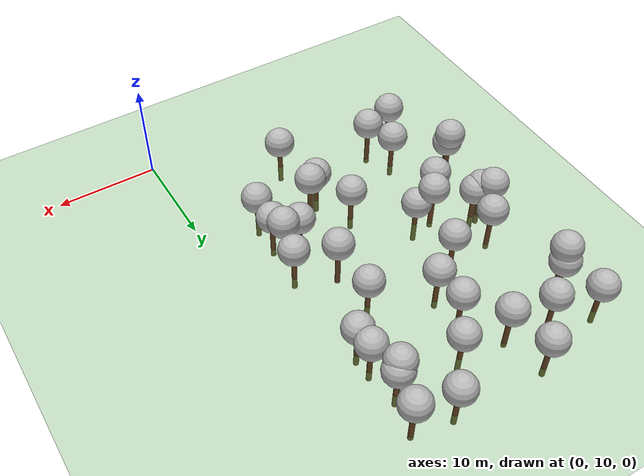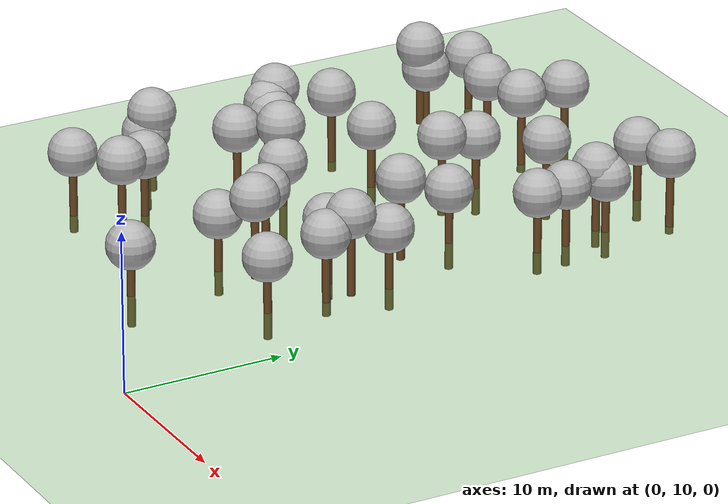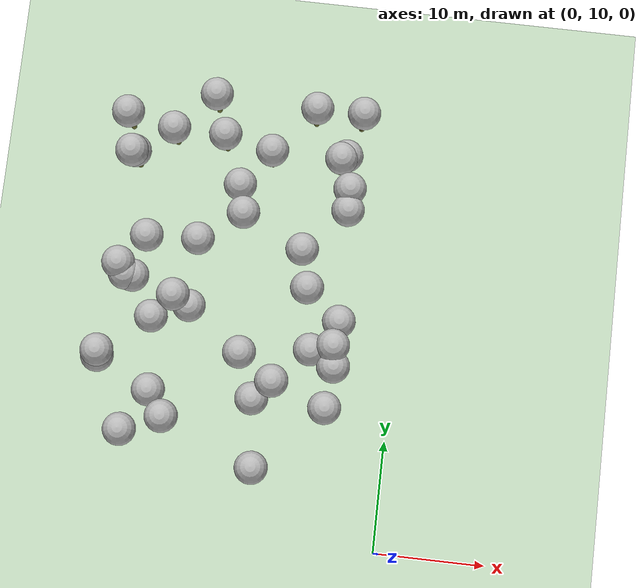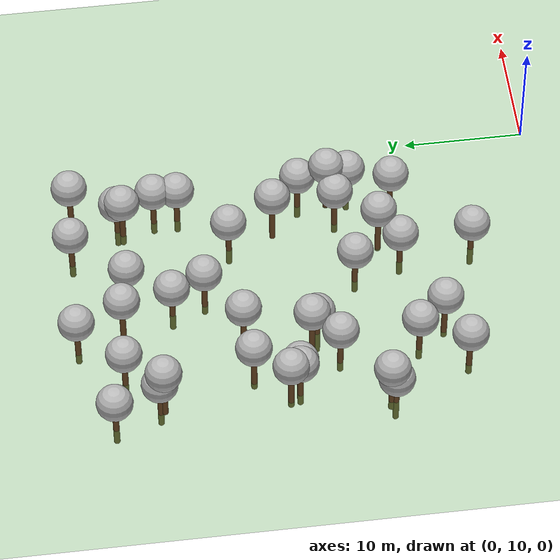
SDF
<sdf version="1.5">
 <world name="default">
  <model name="tree_simple492">
   <static>1</static>
   <link name="link">
    <pose>0 0 0.1 0 -0 0</pose>
    <collision name="collision_trunk">
     <pose>0 0 2 0 -0 0</pose>
     <geometry><cylinder><radius>0.25</radius><length>4</length></cylinder></geometry>
    </collision>
    <collision name="collision_treetop">
     <pose>0 0 5.2 0 -0 0</pose>
     <geometry><sphere><radius>1.5</radius></sphere></geometry>
    </collision>
    <visual name="trunk">
     <pose>0 0 2 0 -0 0</pose>
     <geometry><cylinder><radius>0.25</radius><length>4</length></cylinder></geometry>
     <material>
      <script>
       <uri>model://tree_simple/scripts</uri>
       <uri>model://tree_simple/materials/textures</uri>
       <name>TreeSimple/Trunk</name>
      </script>
     </material>
    </visual>
    <visual name="treetop">
     <pose>0 0 5.2 0 -0 0</pose>
     <geometry><sphere><radius>1.5</radius></sphere></geometry>
     <material>
      <script>
       <uri>model://tree_simple/scripts</uri>
       <uri>model://tree_simple/materials/textures</uri>
       <name>TreeSimple/Treetop</name>
      </script>
     </material>
    </visual>
   </link>
   <pose>-7.60604313382 27.1336498888 -1.1574021075913579 0 -0 0</pose>
  </model>
  <model name="tree_simple483">
   <static>1</static>
   <link name="link">
    <pose>0 0 0.1 0 -0 0</pose>
    <collision name="collision_trunk">
     <pose>0 0 2 0 -0 0</pose>
     <geometry><cylinder><radius>0.25</radius><length>4</length></cylinder></geometry>
    </collision>
    <collision name="collision_treetop">
     <pose>0 0 5.2 0 -0 0</pose>
     <geometry><sphere><radius>1.5</radius></sphere></geometry>
    </collision>
    <visual name="trunk">
     <pose>0 0 2 0 -0 0</pose>
     <geometry><cylinder><radius>0.25</radius><length>4</length></cylinder></geometry>
     <material>
      <script>
       <uri>model://tree_simple/scripts</uri>
       <uri>model://tree_simple/materials/textures</uri>
       <name>TreeSimple/Trunk</name>
      </script>
     </material>
    </visual>
    <visual name="treetop">
     <pose>0 0 5.2 0 -0 0</pose>
     <geometry><sphere><radius>1.5</radius></sphere></geometry>
     <material>
      <script>
       <uri>model://tree_simple/scripts</uri>
       <uri>model://tree_simple/materials/textures</uri>
       <name>TreeSimple/Treetop</name>
      </script>
     </material>
    </visual>
   </link>
   <pose>-6.65162129766 44.7613363002 -1.2295763160659292 0 -0 0</pose>
  </model>
  <model name="tree_simple479">
   <static>1</static>
   <link name="link">
    <pose>0 0 0.1 0 -0 0</pose>
    <collision name="collision_trunk">
     <pose>0 0 2 0 -0 0</pose>
     <geometry><cylinder><radius>0.25</radius><length>4</length></cylinder></geometry>
    </collision>
    <collision name="collision_treetop">
     <pose>0 0 5.2 0 -0 0</pose>
     <geometry><sphere><radius>1.5</radius></sphere></geometry>
    </collision>
    <visual name="trunk">
     <pose>0 0 2 0 -0 0</pose>
     <geometry><cylinder><radius>0.25</radius><length>4</length></cylinder></geometry>
     <material>
      <script>
       <uri>model://tree_simple/scripts</uri>
       <uri>model://tree_simple/materials/textures</uri>
       <name>TreeSimple/Trunk</name>
      </script>
     </material>
    </visual>
    <visual name="treetop">
     <pose>0 0 5.2 0 -0 0</pose>
     <geometry><sphere><radius>1.5</radius></sphere></geometry>
     <material>
      <script>
       <uri>model://tree_simple/scripts</uri>
       <uri>model://tree_simple/materials/textures</uri>
       <name>TreeSimple/Treetop</name>
      </script>
     </material>
    </visual>
   </link>
   <pose>-12.2778199556 22.3020251283 -1.718333494915143 0 -0 0</pose>
  </model>
  <model name="tree_simple466">
   <static>1</static>
   <link name="link">
    <pose>0 0 0.1 0 -0 0</pose>
    <collision name="collision_trunk">
     <pose>0 0 2 0 -0 0</pose>
     <geometry><cylinder><radius>0.25</radius><length>4</length></cylinder></geometry>
    </collision>
    <collision name="collision_treetop">
     <pose>0 0 5.2 0 -0 0</pose>
     <geometry><sphere><radius>1.5</radius></sphere></geometry>
    </collision>
    <visual name="trunk">
     <pose>0 0 2 0 -0 0</pose>
     <geometry><cylinder><radius>0.25</radius><length>4</length></cylinder></geometry>
     <material>
      <script>
       <uri>model://tree_simple/scripts</uri>
       <uri>model://tree_simple/materials/textures</uri>
       <name>TreeSimple/Trunk</name>
      </script>
     </material>
    </visual>
    <visual name="treetop">
     <pose>0 0 5.2 0 -0 0</pose>
     <geometry><sphere><radius>1.5</radius></sphere></geometry>
     <material>
      <script>
       <uri>model://tree_simple/scripts</uri>
       <uri>model://tree_simple/materials/textures</uri>
       <name>TreeSimple/Treetop</name>
      </script>
     </material>
    </visual>
   </link>
   <pose>-5.77986608036 22.173723886 -1.8364854011726721 0 -0 0</pose>
  </model>
  <model name="tree_simple446">
   <static>1</static>
   <link name="link">
    <pose>0 0 0.1 0 -0 0</pose>
    <collision name="collision_trunk">
     <pose>0 0 2 0 -0 0</pose>
     <geometry><cylinder><radius>0.25</radius><length>4</length></cylinder></geometry>
    </collision>
    <collision name="collision_treetop">
     <pose>0 0 5.2 0 -0 0</pose>
     <geometry><sphere><radius>1.5</radius></sphere></geometry>
    </collision>
    <visual name="trunk">
     <pose>0 0 2 0 -0 0</pose>
     <geometry><cylinder><radius>0.25</radius><length>4</length></cylinder></geometry>
     <material>
      <script>
       <uri>model://tree_simple/scripts</uri>
       <uri>model://tree_simple/materials/textures</uri>
       <name>TreeSimple/Trunk</name>
      </script>
     </material>
    </visual>
    <visual name="treetop">
     <pose>0 0 5.2 0 -0 0</pose>
     <geometry><sphere><radius>1.5</radius></sphere></geometry>
     <material>
      <script>
       <uri>model://tree_simple/scripts</uri>
       <uri>model://tree_simple/materials/textures</uri>
       <name>TreeSimple/Treetop</name>
      </script>
     </material>
    </visual>
   </link>
   <pose>-14.8873591434 38.8088683427 -1.1276394450898937 0 -0 0</pose>
  </model>
  <model name="tree_simple441">
   <static>1</static>
   <link name="link">
    <pose>0 0 0.1 0 -0 0</pose>
    <collision name="collision_trunk">
     <pose>0 0 2 0 -0 0</pose>
     <geometry><cylinder><radius>0.25</radius><length>4</length></cylinder></geometry>
    </collision>
    <collision name="collision_treetop">
     <pose>0 0 5.2 0 -0 0</pose>
     <geometry><sphere><radius>1.5</radius></sphere></geometry>
    </collision>
    <visual name="trunk">
     <pose>0 0 2 0 -0 0</pose>
     <geometry><cylinder><radius>0.25</radius><length>4</length></cylinder></geometry>
     <material>
      <script>
       <uri>model://tree_simple/scripts</uri>
       <uri>model://tree_simple/materials/textures</uri>
       <name>TreeSimple/Trunk</name>
      </script>
     </material>
    </visual>
    <visual name="treetop">
     <pose>0 0 5.2 0 -0 0</pose>
     <geometry><sphere><radius>1.5</radius></sphere></geometry>
     <material>
      <script>
       <uri>model://tree_simple/scripts</uri>
       <uri>model://tree_simple/materials/textures</uri>
       <name>TreeSimple/Treetop</name>
      </script>
     </material>
    </visual>
   </link>
   <pose>-25.4258718868 33.0017159702 -0.7226918505296419 0 -0 0</pose>
  </model>
  <model name="tree_simple436">
   <static>1</static>
   <link name="link">
    <pose>0 0 0.1 0 -0 0</pose>
    <collision name="collision_trunk">
     <pose>0 0 2 0 -0 0</pose>
     <geometry><cylinder><radius>0.25</radius><length>4</length></cylinder></geometry>
    </collision>
    <collision name="collision_treetop">
     <pose>0 0 5.2 0 -0 0</pose>
     <geometry><sphere><radius>1.5</radius></sphere></geometry>
    </collision>
    <visual name="trunk">
     <pose>0 0 2 0 -0 0</pose>
     <geometry><cylinder><radius>0.25</radius><length>4</length></cylinder></geometry>
     <material>
      <script>
       <uri>model://tree_simple/scripts</uri>
       <uri>model://tree_simple/materials/textures</uri>
       <name>TreeSimple/Trunk</name>
      </script>
     </material>
    </visual>
    <visual name="treetop">
     <pose>0 0 5.2 0 -0 0</pose>
     <geometry><sphere><radius>1.5</radius></sphere></geometry>
     <material>
      <script>
       <uri>model://tree_simple/scripts</uri>
       <uri>model://tree_simple/materials/textures</uri>
       <name>TreeSimple/Treetop</name>
      </script>
     </material>
    </visual>
   </link>
   <pose>-12.9773602363 44.9895309953 -1.9622175962136006 0 -0 0</pose>
  </model>
  <model name="tree_simple425">
   <static>1</static>
   <link name="link">
    <pose>0 0 0.1 0 -0 0</pose>
    <collision name="collision_trunk">
     <pose>0 0 2 0 -0 0</pose>
     <geometry><cylinder><radius>0.25</radius><length>4</length></cylinder></geometry>
    </collision>
    <collision name="collision_treetop">
     <pose>0 0 5.2 0 -0 0</pose>
     <geometry><sphere><radius>1.5</radius></sphere></geometry>
    </collision>
    <visual name="trunk">
     <pose>0 0 2 0 -0 0</pose>
     <geometry><cylinder><radius>0.25</radius><length>4</length></cylinder></geometry>
     <material>
      <script>
       <uri>model://tree_simple/scripts</uri>
       <uri>model://tree_simple/materials/textures</uri>
       <name>TreeSimple/Trunk</name>
      </script>
     </material>
    </visual>
    <visual name="treetop">
     <pose>0 0 5.2 0 -0 0</pose>
     <geometry><sphere><radius>1.5</radius></sphere></geometry>
     <material>
      <script>
       <uri>model://tree_simple/scripts</uri>
       <uri>model://tree_simple/materials/textures</uri>
       <name>TreeSimple/Treetop</name>
      </script>
     </material>
    </visual>
   </link>
   <pose>-9.294152574 36.1907172759 -1.8510616051689301 0 -0 0</pose>
  </model>
  <model name="tree_simple409">
   <static>1</static>
   <link name="link">
    <pose>0 0 0.1 0 -0 0</pose>
    <collision name="collision_trunk">
     <pose>0 0 2 0 -0 0</pose>
     <geometry><cylinder><radius>0.25</radius><length>4</length></cylinder></geometry>
    </collision>
    <collision name="collision_treetop">
     <pose>0 0 5.2 0 -0 0</pose>
     <geometry><sphere><radius>1.5</radius></sphere></geometry>
    </collision>
    <visual name="trunk">
     <pose>0 0 2 0 -0 0</pose>
     <geometry><cylinder><radius>0.25</radius><length>4</length></cylinder></geometry>
     <material>
      <script>
       <uri>model://tree_simple/scripts</uri>
       <uri>model://tree_simple/materials/textures</uri>
       <name>TreeSimple/Trunk</name>
      </script>
     </material>
    </visual>
    <visual name="treetop">
     <pose>0 0 5.2 0 -0 0</pose>
     <geometry><sphere><radius>1.5</radius></sphere></geometry>
     <material>
      <script>
       <uri>model://tree_simple/scripts</uri>
       <uri>model://tree_simple/materials/textures</uri>
       <name>TreeSimple/Treetop</name>
      </script>
     </material>
    </visual>
   </link>
   <pose>-23.2045481925 35.7189479207 -0.7933432567101588 0 -0 0</pose>
  </model>
  <model name="tree_simple398">
   <static>1</static>
   <link name="link">
    <pose>0 0 0.1 0 -0 0</pose>
    <collision name="collision_trunk">
     <pose>0 0 2 0 -0 0</pose>
     <geometry><cylinder><radius>0.25</radius><length>4</length></cylinder></geometry>
    </collision>
    <collision name="collision_treetop">
     <pose>0 0 5.2 0 -0 0</pose>
     <geometry><sphere><radius>1.5</radius></sphere></geometry>
    </collision>
    <visual name="trunk">
     <pose>0 0 2 0 -0 0</pose>
     <geometry><cylinder><radius>0.25</radius><length>4</length></cylinder></geometry>
     <material>
      <script>
       <uri>model://tree_simple/scripts</uri>
       <uri>model://tree_simple/materials/textures</uri>
       <name>TreeSimple/Trunk</name>
      </script>
     </material>
    </visual>
    <visual name="treetop">
     <pose>0 0 5.2 0 -0 0</pose>
     <geometry><sphere><radius>1.5</radius></sphere></geometry>
     <material>
      <script>
       <uri>model://tree_simple/scripts</uri>
       <uri>model://tree_simple/materials/textures</uri>
       <name>TreeSimple/Treetop</name>
      </script>
     </material>
    </visual>
   </link>
   <pose>-5.63129043723 27.5985943182 -0.21076603917059833 0 -0 0</pose>
  </model>
  <model name="tree_simple359">
   <static>1</static>
   <link name="link">
    <pose>0 0 0.1 0 -0 0</pose>
    <collision name="collision_trunk">
     <pose>0 0 2 0 -0 0</pose>
     <geometry><cylinder><radius>0.25</radius><length>4</length></cylinder></geometry>
    </collision>
    <collision name="collision_treetop">
     <pose>0 0 5.2 0 -0 0</pose>
     <geometry><sphere><radius>1.5</radius></sphere></geometry>
    </collision>
    <visual name="trunk">
     <pose>0 0 2 0 -0 0</pose>
     <geometry><cylinder><radius>0.25</radius><length>4</length></cylinder></geometry>
     <material>
      <script>
       <uri>model://tree_simple/scripts</uri>
       <uri>model://tree_simple/materials/textures</uri>
       <name>TreeSimple/Trunk</name>
      </script>
     </material>
    </visual>
    <visual name="treetop">
     <pose>0 0 5.2 0 -0 0</pose>
     <geometry><sphere><radius>1.5</radius></sphere></geometry>
     <material>
      <script>
       <uri>model://tree_simple/scripts</uri>
       <uri>model://tree_simple/materials/textures</uri>
       <name>TreeSimple/Treetop</name>
      </script>
     </material>
    </visual>
   </link>
   <pose>-20.2372130322 30.6626507403 -0.761230249054939 0 -0 0</pose>
  </model>
  <model name="tree_simple353">
   <static>1</static>
   <link name="link">
    <pose>0 0 0.1 0 -0 0</pose>
    <collision name="collision_trunk">
     <pose>0 0 2 0 -0 0</pose>
     <geometry><cylinder><radius>0.25</radius><length>4</length></cylinder></geometry>
    </collision>
    <collision name="collision_treetop">
     <pose>0 0 5.2 0 -0 0</pose>
     <geometry><sphere><radius>1.5</radius></sphere></geometry>
    </collision>
    <visual name="trunk">
     <pose>0 0 2 0 -0 0</pose>
     <geometry><cylinder><radius>0.25</radius><length>4</length></cylinder></geometry>
     <material>
      <script>
       <uri>model://tree_simple/scripts</uri>
       <uri>model://tree_simple/materials/textures</uri>
       <name>TreeSimple/Trunk</name>
      </script>
     </material>
    </visual>
    <visual name="treetop">
     <pose>0 0 5.2 0 -0 0</pose>
     <geometry><sphere><radius>1.5</radius></sphere></geometry>
     <material>
      <script>
       <uri>model://tree_simple/scripts</uri>
       <uri>model://tree_simple/materials/textures</uri>
       <name>TreeSimple/Treetop</name>
      </script>
     </material>
    </visual>
   </link>
   <pose>-8.45318639894 32.4449291469 -0.09264853999035538 0 -0 0</pose>
  </model>
  <model name="tree_simple343">
   <static>1</static>
   <link name="link">
    <pose>0 0 0.1 0 -0 0</pose>
    <collision name="collision_trunk">
     <pose>0 0 2 0 -0 0</pose>
     <geometry><cylinder><radius>0.25</radius><length>4</length></cylinder></geometry>
    </collision>
    <collision name="collision_treetop">
     <pose>0 0 5.2 0 -0 0</pose>
     <geometry><sphere><radius>1.5</radius></sphere></geometry>
    </collision>
    <visual name="trunk">
     <pose>0 0 2 0 -0 0</pose>
     <geometry><cylinder><radius>0.25</radius><length>4</length></cylinder></geometry>
     <material>
      <script>
       <uri>model://tree_simple/scripts</uri>
       <uri>model://tree_simple/materials/textures</uri>
       <name>TreeSimple/Trunk</name>
      </script>
     </material>
    </visual>
    <visual name="treetop">
     <pose>0 0 5.2 0 -0 0</pose>
     <geometry><sphere><radius>1.5</radius></sphere></geometry>
     <material>
      <script>
       <uri>model://tree_simple/scripts</uri>
       <uri>model://tree_simple/materials/textures</uri>
       <name>TreeSimple/Treetop</name>
      </script>
     </material>
    </visual>
   </link>
   <pose>-17.2958932822 45.7138384605 -0.6714615107388084 0 -0 0</pose>
  </model>
  <model name="tree_simple342">
   <static>1</static>
   <link name="link">
    <pose>0 0 0.1 0 -0 0</pose>
    <collision name="collision_trunk">
     <pose>0 0 2 0 -0 0</pose>
     <geometry><cylinder><radius>0.25</radius><length>4</length></cylinder></geometry>
    </collision>
    <collision name="collision_treetop">
     <pose>0 0 5.2 0 -0 0</pose>
     <geometry><sphere><radius>1.5</radius></sphere></geometry>
    </collision>
    <visual name="trunk">
     <pose>0 0 2 0 -0 0</pose>
     <geometry><cylinder><radius>0.25</radius><length>4</length></cylinder></geometry>
     <material>
      <script>
       <uri>model://tree_simple/scripts</uri>
       <uri>model://tree_simple/materials/textures</uri>
       <name>TreeSimple/Trunk</name>
      </script>
     </material>
    </visual>
    <visual name="treetop">
     <pose>0 0 5.2 0 -0 0</pose>
     <geometry><sphere><radius>1.5</radius></sphere></geometry>
     <material>
      <script>
       <uri>model://tree_simple/scripts</uri>
       <uri>model://tree_simple/materials/textures</uri>
       <name>TreeSimple/Treetop</name>
      </script>
     </material>
    </visual>
   </link>
   <pose>-22.0369501139 46.0033918911 -1.4328441264707457 0 -0 0</pose>
  </model>
  <model name="tree_simple310">
   <static>1</static>
   <link name="link">
    <pose>0 0 0.1 0 -0 0</pose>
    <collision name="collision_trunk">
     <pose>0 0 2 0 -0 0</pose>
     <geometry><cylinder><radius>0.25</radius><length>4</length></cylinder></geometry>
    </collision>
    <collision name="collision_treetop">
     <pose>0 0 5.2 0 -0 0</pose>
     <geometry><sphere><radius>1.5</radius></sphere></geometry>
    </collision>
    <visual name="trunk">
     <pose>0 0 2 0 -0 0</pose>
     <geometry><cylinder><radius>0.25</radius><length>4</length></cylinder></geometry>
     <material>
      <script>
       <uri>model://tree_simple/scripts</uri>
       <uri>model://tree_simple/materials/textures</uri>
       <name>TreeSimple/Trunk</name>
      </script>
     </material>
    </visual>
    <visual name="treetop">
     <pose>0 0 5.2 0 -0 0</pose>
     <geometry><sphere><radius>1.5</radius></sphere></geometry>
     <material>
      <script>
       <uri>model://tree_simple/scripts</uri>
       <uri>model://tree_simple/materials/textures</uri>
       <name>TreeSimple/Treetop</name>
      </script>
     </material>
    </visual>
   </link>
   <pose>-24.1249967054 32.1060106323 -1.695447699782204 0 -0 0</pose>
  </model>
  <model name="tree_simple307">
   <static>1</static>
   <link name="link">
    <pose>0 0 0.1 0 -0 0</pose>
    <collision name="collision_trunk">
     <pose>0 0 2 0 -0 0</pose>
     <geometry><cylinder><radius>0.25</radius><length>4</length></cylinder></geometry>
    </collision>
    <collision name="collision_treetop">
     <pose>0 0 5.2 0 -0 0</pose>
     <geometry><sphere><radius>1.5</radius></sphere></geometry>
    </collision>
    <visual name="trunk">
     <pose>0 0 2 0 -0 0</pose>
     <geometry><cylinder><radius>0.25</radius><length>4</length></cylinder></geometry>
     <material>
      <script>
       <uri>model://tree_simple/scripts</uri>
       <uri>model://tree_simple/materials/textures</uri>
       <name>TreeSimple/Trunk</name>
      </script>
     </material>
    </visual>
    <visual name="treetop">
     <pose>0 0 5.2 0 -0 0</pose>
     <geometry><sphere><radius>1.5</radius></sphere></geometry>
     <material>
      <script>
       <uri>model://tree_simple/scripts</uri>
       <uri>model://tree_simple/materials/textures</uri>
       <name>TreeSimple/Treetop</name>
      </script>
     </material>
    </visual>
   </link>
   <pose>-25.3992623196 43.1282745175 -0.0 0 -0 0</pose>
  </model>
  <model name="tree_simple271">
   <static>1</static>
   <link name="link">
    <pose>0 0 0.1 0 -0 0</pose>
    <collision name="collision_trunk">
     <pose>0 0 2 0 -0 0</pose>
     <geometry><cylinder><radius>0.25</radius><length>4</length></cylinder></geometry>
    </collision>
    <collision name="collision_treetop">
     <pose>0 0 5.2 0 -0 0</pose>
     <geometry><sphere><radius>1.5</radius></sphere></geometry>
    </collision>
    <visual name="trunk">
     <pose>0 0 2 0 -0 0</pose>
     <geometry><cylinder><radius>0.25</radius><length>4</length></cylinder></geometry>
     <material>
      <script>
       <uri>model://tree_simple/scripts</uri>
       <uri>model://tree_simple/materials/textures</uri>
       <name>TreeSimple/Trunk</name>
      </script>
     </material>
    </visual>
    <visual name="treetop">
     <pose>0 0 5.2 0 -0 0</pose>
     <geometry><sphere><radius>1.5</radius></sphere></geometry>
     <material>
      <script>
       <uri>model://tree_simple/scripts</uri>
       <uri>model://tree_simple/materials/textures</uri>
       <name>TreeSimple/Treetop</name>
      </script>
     </material>
    </visual>
   </link>
   <pose>-18.5426783436 49.4999190652 -1.2942994983801523 0 -0 0</pose>
  </model>
  <model name="tree_simple251">
   <static>1</static>
   <link name="link">
    <pose>0 0 0.1 0 -0 0</pose>
    <collision name="collision_trunk">
     <pose>0 0 2 0 -0 0</pose>
     <geometry><cylinder><radius>0.25</radius><length>4</length></cylinder></geometry>
    </collision>
    <collision name="collision_treetop">
     <pose>0 0 5.2 0 -0 0</pose>
     <geometry><sphere><radius>1.5</radius></sphere></geometry>
    </collision>
    <visual name="trunk">
     <pose>0 0 2 0 -0 0</pose>
     <geometry><cylinder><radius>0.25</radius><length>4</length></cylinder></geometry>
     <material>
      <script>
       <uri>model://tree_simple/scripts</uri>
       <uri>model://tree_simple/materials/textures</uri>
       <name>TreeSimple/Trunk</name>
      </script>
     </material>
    </visual>
    <visual name="treetop">
     <pose>0 0 5.2 0 -0 0</pose>
     <geometry><sphere><radius>1.5</radius></sphere></geometry>
     <material>
      <script>
       <uri>model://tree_simple/scripts</uri>
       <uri>model://tree_simple/materials/textures</uri>
       <name>TreeSimple/Treetop</name>
      </script>
     </material>
    </visual>
   </link>
   <pose>-19.9479400909 19.7976665809 -0.7085397852970995 0 -0 0</pose>
  </model>
  <model name="tree_simple248">
   <static>1</static>
   <link name="link">
    <pose>0 0 0.1 0 -0 0</pose>
    <collision name="collision_trunk">
     <pose>0 0 2 0 -0 0</pose>
     <geometry><cylinder><radius>0.25</radius><length>4</length></cylinder></geometry>
    </collision>
    <collision name="collision_treetop">
     <pose>0 0 5.2 0 -0 0</pose>
     <geometry><sphere><radius>1.5</radius></sphere></geometry>
    </collision>
    <visual name="trunk">
     <pose>0 0 2 0 -0 0</pose>
     <geometry><cylinder><radius>0.25</radius><length>4</length></cylinder></geometry>
     <material>
      <script>
       <uri>model://tree_simple/scripts</uri>
       <uri>model://tree_simple/materials/textures</uri>
       <name>TreeSimple/Trunk</name>
      </script>
     </material>
    </visual>
    <visual name="treetop">
     <pose>0 0 5.2 0 -0 0</pose>
     <geometry><sphere><radius>1.5</radius></sphere></geometry>
     <material>
      <script>
       <uri>model://tree_simple/scripts</uri>
       <uri>model://tree_simple/materials/textures</uri>
       <name>TreeSimple/Treetop</name>
      </script>
     </material>
    </visual>
   </link>
   <pose>-9.31615496508 49.2286778513 -1.523476881183616 0 -0 0</pose>
  </model>
  <model name="tree_simple232">
   <static>1</static>
   <link name="link">
    <pose>0 0 0.1 0 -0 0</pose>
    <collision name="collision_trunk">
     <pose>0 0 2 0 -0 0</pose>
     <geometry><cylinder><radius>0.25</radius><length>4</length></cylinder></geometry>
    </collision>
    <collision name="collision_treetop">
     <pose>0 0 5.2 0 -0 0</pose>
     <geometry><sphere><radius>1.5</radius></sphere></geometry>
    </collision>
    <visual name="trunk">
     <pose>0 0 2 0 -0 0</pose>
     <geometry><cylinder><radius>0.25</radius><length>4</length></cylinder></geometry>
     <material>
      <script>
       <uri>model://tree_simple/scripts</uri>
       <uri>model://tree_simple/materials/textures</uri>
       <name>TreeSimple/Trunk</name>
      </script>
     </material>
    </visual>
    <visual name="treetop">
     <pose>0 0 5.2 0 -0 0</pose>
     <geometry><sphere><radius>1.5</radius></sphere></geometry>
     <material>
      <script>
       <uri>model://tree_simple/scripts</uri>
       <uri>model://tree_simple/materials/textures</uri>
       <name>TreeSimple/Treetop</name>
      </script>
     </material>
    </visual>
   </link>
   <pose>-11.6357803634 16.236207717 -2.1321797646048846 0 -0 0</pose>
  </model>
  <model name="tree_simple224">
   <static>1</static>
   <link name="link">
    <pose>0 0 0.1 0 -0 0</pose>
    <collision name="collision_trunk">
     <pose>0 0 2 0 -0 0</pose>
     <geometry><cylinder><radius>0.25</radius><length>4</length></cylinder></geometry>
    </collision>
    <collision name="collision_treetop">
     <pose>0 0 5.2 0 -0 0</pose>
     <geometry><sphere><radius>1.5</radius></sphere></geometry>
    </collision>
    <visual name="trunk">
     <pose>0 0 2 0 -0 0</pose>
     <geometry><cylinder><radius>0.25</radius><length>4</length></cylinder></geometry>
     <material>
      <script>
       <uri>model://tree_simple/scripts</uri>
       <uri>model://tree_simple/materials/textures</uri>
       <name>TreeSimple/Trunk</name>
      </script>
     </material>
    </visual>
    <visual name="treetop">
     <pose>0 0 5.2 0 -0 0</pose>
     <geometry><sphere><radius>1.5</radius></sphere></geometry>
     <material>
      <script>
       <uri>model://tree_simple/scripts</uri>
       <uri>model://tree_simple/materials/textures</uri>
       <name>TreeSimple/Treetop</name>
      </script>
     </material>
    </visual>
   </link>
   <pose>-25.303745436 43.465040084 -1.5114626323591174 0 -0 0</pose>
  </model>
  <model name="tree_simple213">
   <static>1</static>
   <link name="link">
    <pose>0 0 0.1 0 -0 0</pose>
    <collision name="collision_trunk">
     <pose>0 0 2 0 -0 0</pose>
     <geometry><cylinder><radius>0.25</radius><length>4</length></cylinder></geometry>
    </collision>
    <collision name="collision_treetop">
     <pose>0 0 5.2 0 -0 0</pose>
     <geometry><sphere><radius>1.5</radius></sphere></geometry>
    </collision>
    <visual name="trunk">
     <pose>0 0 2 0 -0 0</pose>
     <geometry><cylinder><radius>0.25</radius><length>4</length></cylinder></geometry>
     <material>
      <script>
       <uri>model://tree_simple/scripts</uri>
       <uri>model://tree_simple/materials/textures</uri>
       <name>TreeSimple/Trunk</name>
      </script>
     </material>
    </visual>
    <visual name="treetop">
     <pose>0 0 5.2 0 -0 0</pose>
     <geometry><sphere><radius>1.5</radius></sphere></geometry>
     <material>
      <script>
       <uri>model://tree_simple/scripts</uri>
       <uri>model://tree_simple/materials/textures</uri>
       <name>TreeSimple/Treetop</name>
      </script>
     </material>
    </visual>
   </link>
   <pose>-6.21217405129 45.1783482454 -1.8221429368201094 0 -0 0</pose>
  </model>
  <model name="tree_simple186">
   <static>1</static>
   <link name="link">
    <pose>0 0 0.1 0 -0 0</pose>
    <collision name="collision_trunk">
     <pose>0 0 2 0 -0 0</pose>
     <geometry><cylinder><radius>0.25</radius><length>4</length></cylinder></geometry>
    </collision>
    <collision name="collision_treetop">
     <pose>0 0 5.2 0 -0 0</pose>
     <geometry><sphere><radius>1.5</radius></sphere></geometry>
    </collision>
    <visual name="trunk">
     <pose>0 0 2 0 -0 0</pose>
     <geometry><cylinder><radius>0.25</radius><length>4</length></cylinder></geometry>
     <material>
      <script>
       <uri>model://tree_simple/scripts</uri>
       <uri>model://tree_simple/materials/textures</uri>
       <name>TreeSimple/Trunk</name>
      </script>
     </material>
    </visual>
    <visual name="treetop">
     <pose>0 0 5.2 0 -0 0</pose>
     <geometry><sphere><radius>1.5</radius></sphere></geometry>
     <material>
      <script>
       <uri>model://tree_simple/scripts</uri>
       <uri>model://tree_simple/materials/textures</uri>
       <name>TreeSimple/Treetop</name>
      </script>
     </material>
    </visual>
   </link>
   <pose>-26.4394079644 24.666728782 -2.342204798350858 0 -0 0</pose>
  </model>
  <model name="tree_simple183">
   <static>1</static>
   <link name="link">
    <pose>0 0 0.1 0 -0 0</pose>
    <collision name="collision_trunk">
     <pose>0 0 2 0 -0 0</pose>
     <geometry><cylinder><radius>0.25</radius><length>4</length></cylinder></geometry>
    </collision>
    <collision name="collision_treetop">
     <pose>0 0 5.2 0 -0 0</pose>
     <geometry><sphere><radius>1.5</radius></sphere></geometry>
    </collision>
    <visual name="trunk">
     <pose>0 0 2 0 -0 0</pose>
     <geometry><cylinder><radius>0.25</radius><length>4</length></cylinder></geometry>
     <material>
      <script>
       <uri>model://tree_simple/scripts</uri>
       <uri>model://tree_simple/materials/textures</uri>
       <name>TreeSimple/Trunk</name>
      </script>
     </material>
    </visual>
    <visual name="treetop">
     <pose>0 0 5.2 0 -0 0</pose>
     <geometry><sphere><radius>1.5</radius></sphere></geometry>
     <material>
      <script>
       <uri>model://tree_simple/scripts</uri>
       <uri>model://tree_simple/materials/textures</uri>
       <name>TreeSimple/Treetop</name>
      </script>
     </material>
    </visual>
   </link>
   <pose>-24.8051767245 32.1734283562 -1.3540708736038616 0 -0 0</pose>
  </model>
  <model name="tree_simple174">
   <static>1</static>
   <link name="link">
    <pose>0 0 0.1 0 -0 0</pose>
    <collision name="collision_trunk">
     <pose>0 0 2 0 -0 0</pose>
     <geometry><cylinder><radius>0.25</radius><length>4</length></cylinder></geometry>
    </collision>
    <collision name="collision_treetop">
     <pose>0 0 5.2 0 -0 0</pose>
     <geometry><sphere><radius>1.5</radius></sphere></geometry>
    </collision>
    <visual name="trunk">
     <pose>0 0 2 0 -0 0</pose>
     <geometry><cylinder><radius>0.25</radius><length>4</length></cylinder></geometry>
     <material>
      <script>
       <uri>model://tree_simple/scripts</uri>
       <uri>model://tree_simple/materials/textures</uri>
       <name>TreeSimple/Trunk</name>
      </script>
     </material>
    </visual>
    <visual name="treetop">
     <pose>0 0 5.2 0 -0 0</pose>
     <geometry><sphere><radius>1.5</radius></sphere></geometry>
     <material>
      <script>
       <uri>model://tree_simple/scripts</uri>
       <uri>model://tree_simple/materials/textures</uri>
       <name>TreeSimple/Treetop</name>
      </script>
     </material>
    </visual>
   </link>
   <pose>-26.363349587 25.0273342245 -1.073442393235564 0 -0 0</pose>
  </model>
  <model name="tree_simple161">
   <static>1</static>
   <link name="link">
    <pose>0 0 0.1 0 -0 0</pose>
    <collision name="collision_trunk">
     <pose>0 0 2 0 -0 0</pose>
     <geometry><cylinder><radius>0.25</radius><length>4</length></cylinder></geometry>
    </collision>
    <collision name="collision_treetop">
     <pose>0 0 5.2 0 -0 0</pose>
     <geometry><sphere><radius>1.5</radius></sphere></geometry>
    </collision>
    <visual name="trunk">
     <pose>0 0 2 0 -0 0</pose>
     <geometry><cylinder><radius>0.25</radius><length>4</length></cylinder></geometry>
     <material>
      <script>
       <uri>model://tree_simple/scripts</uri>
       <uri>model://tree_simple/materials/textures</uri>
       <name>TreeSimple/Trunk</name>
      </script>
     </material>
    </visual>
    <visual name="treetop">
     <pose>0 0 5.2 0 -0 0</pose>
     <geometry><sphere><radius>1.5</radius></sphere></geometry>
     <material>
      <script>
       <uri>model://tree_simple/scripts</uri>
       <uri>model://tree_simple/materials/textures</uri>
       <name>TreeSimple/Treetop</name>
      </script>
     </material>
    </visual>
   </link>
   <pose>-5.06082538739 48.9463602033 -0.6173422704538687 0 -0 0</pose>
  </model>
  <model name="tree_simple134">
   <static>1</static>
   <link name="link">
    <pose>0 0 0.1 0 -0 0</pose>
    <collision name="collision_trunk">
     <pose>0 0 2 0 -0 0</pose>
     <geometry><cylinder><radius>0.25</radius><length>4</length></cylinder></geometry>
    </collision>
    <collision name="collision_treetop">
     <pose>0 0 5.2 0 -0 0</pose>
     <geometry><sphere><radius>1.5</radius></sphere></geometry>
    </collision>
    <visual name="trunk">
     <pose>0 0 2 0 -0 0</pose>
     <geometry><cylinder><radius>0.25</radius><length>4</length></cylinder></geometry>
     <material>
      <script>
       <uri>model://tree_simple/scripts</uri>
       <uri>model://tree_simple/materials/textures</uri>
       <name>TreeSimple/Trunk</name>
      </script>
     </material>
    </visual>
    <visual name="treetop">
     <pose>0 0 5.2 0 -0 0</pose>
     <geometry><sphere><radius>1.5</radius></sphere></geometry>
     <material>
      <script>
       <uri>model://tree_simple/scripts</uri>
       <uri>model://tree_simple/materials/textures</uri>
       <name>TreeSimple/Treetop</name>
      </script>
     </material>
    </visual>
   </link>
   <pose>-15.5112177362 41.52540577 -1.9037183458984392 0 -0 0</pose>
  </model>
  <model name="tree_simple116">
   <static>1</static>
   <link name="link">
    <pose>0 0 0.1 0 -0 0</pose>
    <collision name="collision_trunk">
     <pose>0 0 2 0 -0 0</pose>
     <geometry><cylinder><radius>0.25</radius><length>4</length></cylinder></geometry>
    </collision>
    <collision name="collision_treetop">
     <pose>0 0 5.2 0 -0 0</pose>
     <geometry><sphere><radius>1.5</radius></sphere></geometry>
    </collision>
    <visual name="trunk">
     <pose>0 0 2 0 -0 0</pose>
     <geometry><cylinder><radius>0.25</radius><length>4</length></cylinder></geometry>
     <material>
      <script>
       <uri>model://tree_simple/scripts</uri>
       <uri>model://tree_simple/materials/textures</uri>
       <name>TreeSimple/Trunk</name>
      </script>
     </material>
    </visual>
    <visual name="treetop">
     <pose>0 0 5.2 0 -0 0</pose>
     <geometry><sphere><radius>1.5</radius></sphere></geometry>
     <material>
      <script>
       <uri>model://tree_simple/scripts</uri>
       <uri>model://tree_simple/materials/textures</uri>
       <name>TreeSimple/Treetop</name>
      </script>
     </material>
    </visual>
   </link>
   <pose>-18.6791358841 36.0330135093 -1.3407064793691645 0 -0 0</pose>
  </model>
  <model name="tree_simple111">
   <static>1</static>
   <link name="link">
    <pose>0 0 0.1 0 -0 0</pose>
    <collision name="collision_trunk">
     <pose>0 0 2 0 -0 0</pose>
     <geometry><cylinder><radius>0.25</radius><length>4</length></cylinder></geometry>
    </collision>
    <collision name="collision_treetop">
     <pose>0 0 5.2 0 -0 0</pose>
     <geometry><sphere><radius>1.5</radius></sphere></geometry>
    </collision>
    <visual name="trunk">
     <pose>0 0 2 0 -0 0</pose>
     <geometry><cylinder><radius>0.25</radius><length>4</length></cylinder></geometry>
     <material>
      <script>
       <uri>model://tree_simple/scripts</uri>
       <uri>model://tree_simple/materials/textures</uri>
       <name>TreeSimple/Trunk</name>
      </script>
     </material>
    </visual>
    <visual name="treetop">
     <pose>0 0 5.2 0 -0 0</pose>
     <geometry><sphere><radius>1.5</radius></sphere></geometry>
     <material>
      <script>
       <uri>model://tree_simple/scripts</uri>
       <uri>model://tree_simple/materials/textures</uri>
       <name>TreeSimple/Treetop</name>
      </script>
     </material>
    </visual>
   </link>
   <pose>-26.4353630298 47.1515170398 -1.8042274045449895 0 -0 0</pose>
  </model>
  <model name="tree_simple110">
   <static>1</static>
   <link name="link">
    <pose>0 0 0.1 0 -0 0</pose>
    <collision name="collision_trunk">
     <pose>0 0 2 0 -0 0</pose>
     <geometry><cylinder><radius>0.25</radius><length>4</length></cylinder></geometry>
    </collision>
    <collision name="collision_treetop">
     <pose>0 0 5.2 0 -0 0</pose>
     <geometry><sphere><radius>1.5</radius></sphere></geometry>
    </collision>
    <visual name="trunk">
     <pose>0 0 2 0 -0 0</pose>
     <geometry><cylinder><radius>0.25</radius><length>4</length></cylinder></geometry>
     <material>
      <script>
       <uri>model://tree_simple/scripts</uri>
       <uri>model://tree_simple/materials/textures</uri>
       <name>TreeSimple/Trunk</name>
      </script>
     </material>
    </visual>
    <visual name="treetop">
     <pose>0 0 5.2 0 -0 0</pose>
     <geometry><sphere><radius>1.5</radius></sphere></geometry>
     <material>
      <script>
       <uri>model://tree_simple/scripts</uri>
       <uri>model://tree_simple/materials/textures</uri>
       <name>TreeSimple/Treetop</name>
      </script>
     </material>
    </visual>
   </link>
   <pose>-5.41034027226 25.8326134986 -1.0216268247294344 0 -0 0</pose>
  </model>
  <model name="tree_simple104">
   <static>1</static>
   <link name="link">
    <pose>0 0 0.1 0 -0 0</pose>
    <collision name="collision_trunk">
     <pose>0 0 2 0 -0 0</pose>
     <geometry><cylinder><radius>0.25</radius><length>4</length></cylinder></geometry>
    </collision>
    <collision name="collision_treetop">
     <pose>0 0 5.2 0 -0 0</pose>
     <geometry><sphere><radius>1.5</radius></sphere></geometry>
    </collision>
    <visual name="trunk">
     <pose>0 0 2 0 -0 0</pose>
     <geometry><cylinder><radius>0.25</radius><length>4</length></cylinder></geometry>
     <material>
      <script>
       <uri>model://tree_simple/scripts</uri>
       <uri>model://tree_simple/materials/textures</uri>
       <name>TreeSimple/Trunk</name>
      </script>
     </material>
    </visual>
    <visual name="treetop">
     <pose>0 0 5.2 0 -0 0</pose>
     <geometry><sphere><radius>1.5</radius></sphere></geometry>
     <material>
      <script>
       <uri>model://tree_simple/scripts</uri>
       <uri>model://tree_simple/materials/textures</uri>
       <name>TreeSimple/Treetop</name>
      </script>
     </material>
    </visual>
   </link>
   <pose>-21.9670509501 28.5770993943 -1.2292370317242778 0 -0 0</pose>
  </model>
  <model name="tree_simple103">
   <static>1</static>
   <link name="link">
    <pose>0 0 0.1 0 -0 0</pose>
    <collision name="collision_trunk">
     <pose>0 0 2 0 -0 0</pose>
     <geometry><cylinder><radius>0.25</radius><length>4</length></cylinder></geometry>
    </collision>
    <collision name="collision_treetop">
     <pose>0 0 5.2 0 -0 0</pose>
     <geometry><sphere><radius>1.5</radius></sphere></geometry>
    </collision>
    <visual name="trunk">
     <pose>0 0 2 0 -0 0</pose>
     <geometry><cylinder><radius>0.25</radius><length>4</length></cylinder></geometry>
     <material>
      <script>
       <uri>model://tree_simple/scripts</uri>
       <uri>model://tree_simple/materials/textures</uri>
       <name>TreeSimple/Trunk</name>
      </script>
     </material>
    </visual>
    <visual name="treetop">
     <pose>0 0 5.2 0 -0 0</pose>
     <geometry><sphere><radius>1.5</radius></sphere></geometry>
     <material>
      <script>
       <uri>model://tree_simple/scripts</uri>
       <uri>model://tree_simple/materials/textures</uri>
       <name>TreeSimple/Treetop</name>
      </script>
     </material>
    </visual>
   </link>
   <pose>-23.5128318618 18.2920552876 -1.2437468300467884 0 -0 0</pose>
  </model>
  <model name="tree_simple92">
   <static>1</static>
   <link name="link">
    <pose>0 0 0.1 0 -0 0</pose>
    <collision name="collision_trunk">
     <pose>0 0 2 0 -0 0</pose>
     <geometry><cylinder><radius>0.25</radius><length>4</length></cylinder></geometry>
    </collision>
    <collision name="collision_treetop">
     <pose>0 0 5.2 0 -0 0</pose>
     <geometry><sphere><radius>1.5</radius></sphere></geometry>
    </collision>
    <visual name="trunk">
     <pose>0 0 2 0 -0 0</pose>
     <geometry><cylinder><radius>0.25</radius><length>4</length></cylinder></geometry>
     <material>
      <script>
       <uri>model://tree_simple/scripts</uri>
       <uri>model://tree_simple/materials/textures</uri>
       <name>TreeSimple/Trunk</name>
      </script>
     </material>
    </visual>
    <visual name="treetop">
     <pose>0 0 5.2 0 -0 0</pose>
     <geometry><sphere><radius>1.5</radius></sphere></geometry>
     <material>
      <script>
       <uri>model://tree_simple/scripts</uri>
       <uri>model://tree_simple/materials/textures</uri>
       <name>TreeSimple/Treetop</name>
      </script>
     </material>
    </visual>
   </link>
   <pose>-5.60936243571 42.0879357929 -1.4384868773969262 0 -0 0</pose>
  </model>
  <model name="tree_simple79">
   <static>1</static>
   <link name="link">
    <pose>0 0 0.1 0 -0 0</pose>
    <collision name="collision_trunk">
     <pose>0 0 2 0 -0 0</pose>
     <geometry><cylinder><radius>0.25</radius><length>4</length></cylinder></geometry>
    </collision>
    <collision name="collision_treetop">
     <pose>0 0 5.2 0 -0 0</pose>
     <geometry><sphere><radius>1.5</radius></sphere></geometry>
    </collision>
    <visual name="trunk">
     <pose>0 0 2 0 -0 0</pose>
     <geometry><cylinder><radius>0.25</radius><length>4</length></cylinder></geometry>
     <material>
      <script>
       <uri>model://tree_simple/scripts</uri>
       <uri>model://tree_simple/materials/textures</uri>
       <name>TreeSimple/Trunk</name>
      </script>
     </material>
    </visual>
    <visual name="treetop">
     <pose>0 0 5.2 0 -0 0</pose>
     <geometry><sphere><radius>1.5</radius></sphere></geometry>
     <material>
      <script>
       <uri>model://tree_simple/scripts</uri>
       <uri>model://tree_simple/materials/textures</uri>
       <name>TreeSimple/Treetop</name>
      </script>
     </material>
    </visual>
   </link>
   <pose>-21.429711887 22.0499315705 -1.3858872427398017 0 -0 0</pose>
  </model>
  <model name="tree_simple77">
   <static>1</static>
   <link name="link">
    <pose>0 0 0.1 0 -0 0</pose>
    <collision name="collision_trunk">
     <pose>0 0 2 0 -0 0</pose>
     <geometry><cylinder><radius>0.25</radius><length>4</length></cylinder></geometry>
    </collision>
    <collision name="collision_treetop">
     <pose>0 0 5.2 0 -0 0</pose>
     <geometry><sphere><radius>1.5</radius></sphere></geometry>
    </collision>
    <visual name="trunk">
     <pose>0 0 2 0 -0 0</pose>
     <geometry><cylinder><radius>0.25</radius><length>4</length></cylinder></geometry>
     <material>
      <script>
       <uri>model://tree_simple/scripts</uri>
       <uri>model://tree_simple/materials/textures</uri>
       <name>TreeSimple/Trunk</name>
      </script>
     </material>
    </visual>
    <visual name="treetop">
     <pose>0 0 5.2 0 -0 0</pose>
     <geometry><sphere><radius>1.5</radius></sphere></geometry>
     <material>
      <script>
       <uri>model://tree_simple/scripts</uri>
       <uri>model://tree_simple/materials/textures</uri>
       <name>TreeSimple/Treetop</name>
      </script>
     </material>
    </visual>
   </link>
   <pose>-10.6651451359 23.9118826029 -0.3398162144925856 0 -0 0</pose>
  </model>
  <model name="tree_simple59">
   <static>1</static>
   <link name="link">
    <pose>0 0 0.1 0 -0 0</pose>
    <collision name="collision_trunk">
     <pose>0 0 2 0 -0 0</pose>
     <geometry><cylinder><radius>0.25</radius><length>4</length></cylinder></geometry>
    </collision>
    <collision name="collision_treetop">
     <pose>0 0 5.2 0 -0 0</pose>
     <geometry><sphere><radius>1.5</radius></sphere></geometry>
    </collision>
    <visual name="trunk">
     <pose>0 0 2 0 -0 0</pose>
     <geometry><cylinder><radius>0.25</radius><length>4</length></cylinder></geometry>
     <material>
      <script>
       <uri>model://tree_simple/scripts</uri>
       <uri>model://tree_simple/materials/textures</uri>
       <name>TreeSimple/Trunk</name>
      </script>
     </material>
    </visual>
    <visual name="treetop">
     <pose>0 0 5.2 0 -0 0</pose>
     <geometry><sphere><radius>1.5</radius></sphere></geometry>
     <material>
      <script>
       <uri>model://tree_simple/scripts</uri>
       <uri>model://tree_simple/materials/textures</uri>
       <name>TreeSimple/Treetop</name>
      </script>
     </material>
    </visual>
   </link>
   <pose>-5.58238375985 40.1230579817 -1.539555736757594 0 -0 0</pose>
  </model>
  <model name="tree_simple55">
   <static>1</static>
   <link name="link">
    <pose>0 0 0.1 0 -0 0</pose>
    <collision name="collision_trunk">
     <pose>0 0 2 0 -0 0</pose>
     <geometry><cylinder><radius>0.25</radius><length>4</length></cylinder></geometry>
    </collision>
    <collision name="collision_treetop">
     <pose>0 0 5.2 0 -0 0</pose>
     <geometry><sphere><radius>1.5</radius></sphere></geometry>
    </collision>
    <visual name="trunk">
     <pose>0 0 2 0 -0 0</pose>
     <geometry><cylinder><radius>0.25</radius><length>4</length></cylinder></geometry>
     <material>
      <script>
       <uri>model://tree_simple/scripts</uri>
       <uri>model://tree_simple/materials/textures</uri>
       <name>TreeSimple/Trunk</name>
      </script>
     </material>
    </visual>
    <visual name="treetop">
     <pose>0 0 5.2 0 -0 0</pose>
     <geometry><sphere><radius>1.5</radius></sphere></geometry>
     <material>
      <script>
       <uri>model://tree_simple/scripts</uri>
       <uri>model://tree_simple/materials/textures</uri>
       <name>TreeSimple/Treetop</name>
      </script>
     </material>
    </visual>
   </link>
   <pose>-18.841593574 30.0616232738 -2.5 0 -0 0</pose>
  </model>
  <model name="tree_simple32">
   <static>1</static>
   <link name="link">
    <pose>0 0 0.1 0 -0 0</pose>
    <collision name="collision_trunk">
     <pose>0 0 2 0 -0 0</pose>
     <geometry><cylinder><radius>0.25</radius><length>4</length></cylinder></geometry>
    </collision>
    <collision name="collision_treetop">
     <pose>0 0 5.2 0 -0 0</pose>
     <geometry><sphere><radius>1.5</radius></sphere></geometry>
    </collision>
    <visual name="trunk">
     <pose>0 0 2 0 -0 0</pose>
     <geometry><cylinder><radius>0.25</radius><length>4</length></cylinder></geometry>
     <material>
      <script>
       <uri>model://tree_simple/scripts</uri>
       <uri>model://tree_simple/materials/textures</uri>
       <name>TreeSimple/Trunk</name>
      </script>
     </material>
    </visual>
    <visual name="treetop">
     <pose>0 0 5.2 0 -0 0</pose>
     <geometry><sphere><radius>1.5</radius></sphere></geometry>
     <material>
      <script>
       <uri>model://tree_simple/scripts</uri>
       <uri>model://tree_simple/materials/textures</uri>
       <name>TreeSimple/Treetop</name>
      </script>
     </material>
    </visual>
   </link>
   <pose>-5.32221302337 29.9695292924 -1.5074854414467893 0 -0 0</pose>
  </model>
  <model name="tree_simple17">
   <static>1</static>
   <link name="link">
    <pose>0 0 0.1 0 -0 0</pose>
    <collision name="collision_trunk">
     <pose>0 0 2 0 -0 0</pose>
     <geometry><cylinder><radius>0.25</radius><length>4</length></cylinder></geometry>
    </collision>
    <collision name="collision_treetop">
     <pose>0 0 5.2 0 -0 0</pose>
     <geometry><sphere><radius>1.5</radius></sphere></geometry>
    </collision>
    <visual name="trunk">
     <pose>0 0 2 0 -0 0</pose>
     <geometry><cylinder><radius>0.25</radius><length>4</length></cylinder></geometry>
     <material>
      <script>
       <uri>model://tree_simple/scripts</uri>
       <uri>model://tree_simple/materials/textures</uri>
       <name>TreeSimple/Trunk</name>
      </script>
     </material>
    </visual>
    <visual name="treetop">
     <pose>0 0 5.2 0 -0 0</pose>
     <geometry><sphere><radius>1.5</radius></sphere></geometry>
     <material>
      <script>
       <uri>model://tree_simple/scripts</uri>
       <uri>model://tree_simple/materials/textures</uri>
       <name>TreeSimple/Treetop</name>
      </script>
     </material>
    </visual>
   </link>
   <pose>-13.828816412 26.2649545803 -1.489996384560143 0 -0 0</pose>
  </model>
  <model name="ground_plane">
   <static>true</static>
   <link name="link">
    <collision name="collision">
     <geometry><plane><normal>0 0 1</normal><size>250 250</size></plane></geometry>
     <surface><friction><ode><mu>1</mu><mu2>1</mu2></ode></friction></surface>
    </collision>
    <visual name="grass">
     <cast_shadows>false</cast_shadows>
     <geometry><plane><normal>0 0 1</normal><size>150 250</size></plane></geometry>
     <material>
      <script><uri>file://media/materials/scripts/Gazebo.material</uri><name>Gazebo/Grass</name></script>
     </material>
    </visual>
   </link>
  </model>
 </world>
</sdf>
